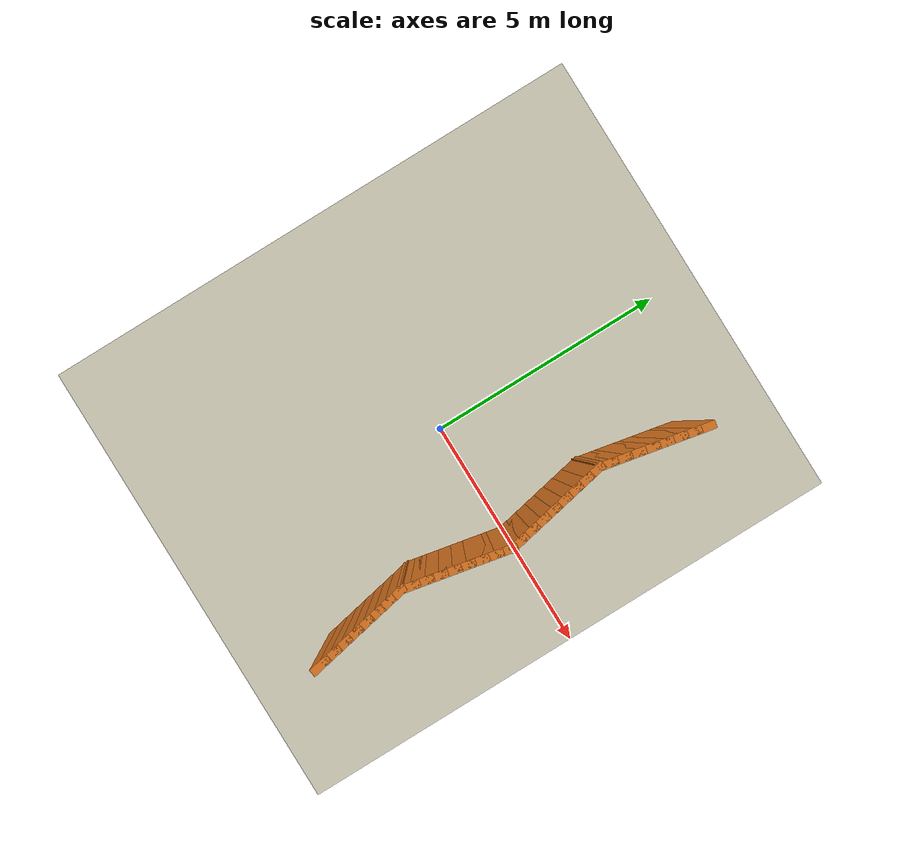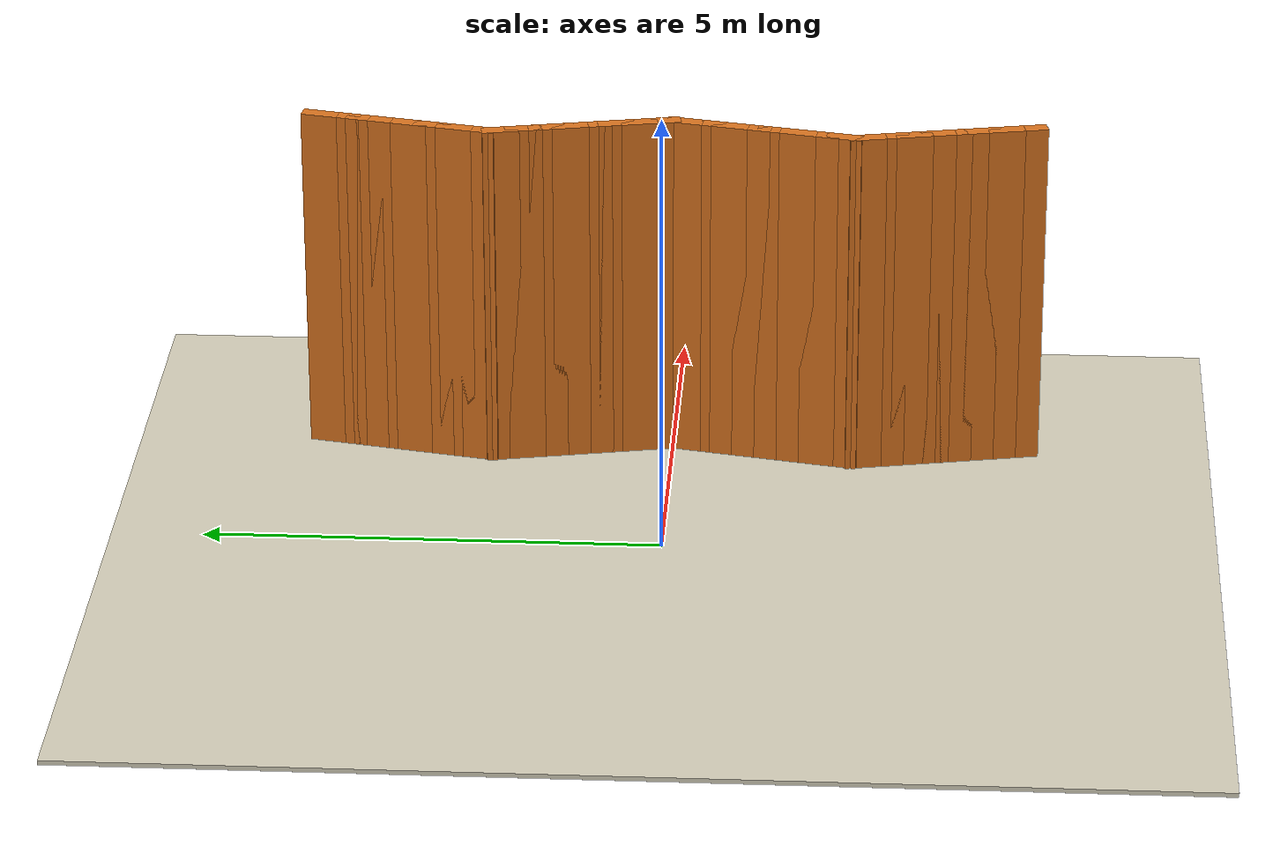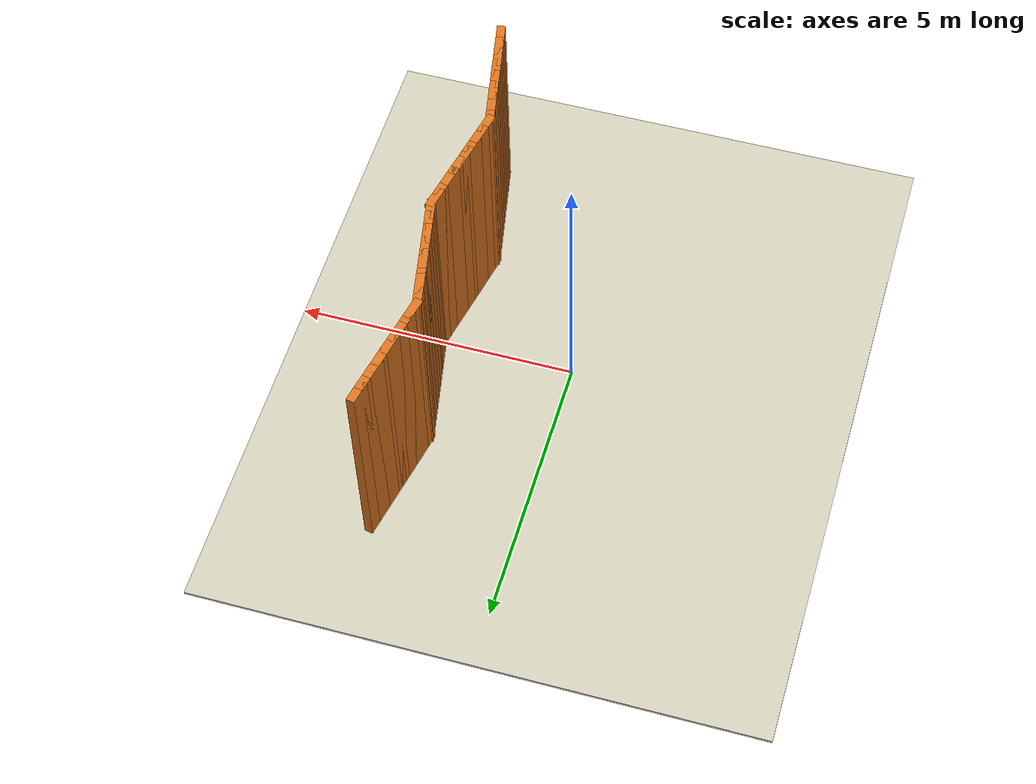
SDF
<sdf version="1.9">
 <world name="p4_zigzag">
  <physics name="1ms" type="ignored">
   <max_step_size>0.001</max_step_size>
   <real_time_factor>1.0</real_time_factor>
  </physics>
  <plugin filename="gz-sim-physics-system" name="gz::sim::systems::Physics"/>
  <plugin filename="gz-sim-scene-broadcaster-system" name="gz::sim::systems::SceneBroadcaster"/>
  <plugin filename="gz-sim-user-commands-system" name="gz::sim::systems::UserCommands"/>
  <plugin filename="gz-sim-sensors-system" name="gz::sim::systems::Sensors">
   <render_engine>ogre2</render_engine>
  </plugin>
  <plugin filename="gz-sim-imu-system" name="gz::sim::systems::Imu"/>
  <plugin filename="gz-sim-navsat-system" name="gz::sim::systems::NavSat"/>
  <spherical_coordinates>
   <latitude_deg>-35.363262</latitude_deg>
   <longitude_deg>149.165237</longitude_deg>
   <elevation>584</elevation>
   <heading_deg>0</heading_deg>
   <surface_model>EARTH_WGS84</surface_model>
  </spherical_coordinates>
  <light type="directional" name="main_light">
   <cast_shadows>false</cast_shadows>
   <pose>0 0 10 0 0 0</pose>
   <diffuse>1.0 1.0 1.0 1</diffuse>
   <specular>0.5 0.5 0.5 1</specular>
   <direction>0.1 0.1 -1</direction>
  </light>
  <model name="floor">
   <static>true</static>
   <link name="link">
    <collision name="c"><geometry><box><size>10.0 12.0 0.05</size></box></geometry></collision>
    <visual name="v">
     <geometry><box><size>10.0 12.0 0.05</size></box></geometry>
     <material><ambient>0.82 0.80 0.72 1</ambient><diffuse>0.82 0.80 0.72 1</diffuse></material>
    </visual>
   </link>
  </model>
  <model name="wall_000">
   <static>true</static>
   <pose>2.3750 -3.8750 2.0000 0 0 1.76819</pose>
   <link name="link">
    <collision name="c"><geometry><box><size>0.4050 0.1500 4.0000</size></box></geometry></collision>
    <visual name="v">
     <geometry><box><size>0.4050 0.1500 4.0000</size></box></geometry>
     <material><ambient>0.85 0.45 0.12 1</ambient><diffuse>0.85 0.45 0.12 1</diffuse></material>
    </visual>
   </link>
  </model>
  <model name="wall_001">
   <static>true</static>
   <pose>2.3250 -3.6250 2.0000 0 0 1.76819</pose>
   <link name="link">
    <collision name="c"><geometry><box><size>0.4050 0.1500 4.0000</size></box></geometry></collision>
    <visual name="v">
     <geometry><box><size>0.4050 0.1500 4.0000</size></box></geometry>
     <material><ambient>0.85 0.45 0.12 1</ambient><diffuse>0.85 0.45 0.12 1</diffuse></material>
    </visual>
   </link>
  </model>
  <model name="wall_002">
   <static>true</static>
   <pose>2.2750 -3.3750 2.0000 0 0 1.76819</pose>
   <link name="link">
    <collision name="c"><geometry><box><size>0.4050 0.1500 4.0000</size></box></geometry></collision>
    <visual name="v">
     <geometry><box><size>0.4050 0.1500 4.0000</size></box></geometry>
     <material><ambient>0.85 0.45 0.12 1</ambient><diffuse>0.85 0.45 0.12 1</diffuse></material>
    </visual>
   </link>
  </model>
  <model name="wall_003">
   <static>true</static>
   <pose>2.2250 -3.1250 2.0000 0 0 1.76819</pose>
   <link name="link">
    <collision name="c"><geometry><box><size>0.4050 0.1500 4.0000</size></box></geometry></collision>
    <visual name="v">
     <geometry><box><size>0.4050 0.1500 4.0000</size></box></geometry>
     <material><ambient>0.85 0.45 0.12 1</ambient><diffuse>0.85 0.45 0.12 1</diffuse></material>
    </visual>
   </link>
  </model>
  <model name="wall_004">
   <static>true</static>
   <pose>2.1750 -2.8750 2.0000 0 0 1.76819</pose>
   <link name="link">
    <collision name="c"><geometry><box><size>0.4050 0.1500 4.0000</size></box></geometry></collision>
    <visual name="v">
     <geometry><box><size>0.4050 0.1500 4.0000</size></box></geometry>
     <material><ambient>0.85 0.45 0.12 1</ambient><diffuse>0.85 0.45 0.12 1</diffuse></material>
    </visual>
   </link>
  </model>
  <model name="wall_005">
   <static>true</static>
   <pose>2.1250 -2.6250 2.0000 0 0 1.76819</pose>
   <link name="link">
    <collision name="c"><geometry><box><size>0.4050 0.1500 4.0000</size></box></geometry></collision>
    <visual name="v">
     <geometry><box><size>0.4050 0.1500 4.0000</size></box></geometry>
     <material><ambient>0.85 0.45 0.12 1</ambient><diffuse>0.85 0.45 0.12 1</diffuse></material>
    </visual>
   </link>
  </model>
  <model name="wall_006">
   <static>true</static>
   <pose>2.0750 -2.3750 2.0000 0 0 1.76819</pose>
   <link name="link">
    <collision name="c"><geometry><box><size>0.4050 0.1500 4.0000</size></box></geometry></collision>
    <visual name="v">
     <geometry><box><size>0.4050 0.1500 4.0000</size></box></geometry>
     <material><ambient>0.85 0.45 0.12 1</ambient><diffuse>0.85 0.45 0.12 1</diffuse></material>
    </visual>
   </link>
  </model>
  <model name="wall_007">
   <static>true</static>
   <pose>2.0250 -2.1250 2.0000 0 0 1.76819</pose>
   <link name="link">
    <collision name="c"><geometry><box><size>0.4050 0.1500 4.0000</size></box></geometry></collision>
    <visual name="v">
     <geometry><box><size>0.4050 0.1500 4.0000</size></box></geometry>
     <material><ambient>0.85 0.45 0.12 1</ambient><diffuse>0.85 0.45 0.12 1</diffuse></material>
    </visual>
   </link>
  </model>
  <model name="wall_008">
   <static>true</static>
   <pose>2.0250 -1.8750 2.0000 0 0 1.37340</pose>
   <link name="link">
    <collision name="c"><geometry><box><size>0.4050 0.1500 4.0000</size></box></geometry></collision>
    <visual name="v">
     <geometry><box><size>0.4050 0.1500 4.0000</size></box></geometry>
     <material><ambient>0.85 0.45 0.12 1</ambient><diffuse>0.85 0.45 0.12 1</diffuse></material>
    </visual>
   </link>
  </model>
  <model name="wall_009">
   <static>true</static>
   <pose>2.0750 -1.6250 2.0000 0 0 1.37340</pose>
   <link name="link">
    <collision name="c"><geometry><box><size>0.4050 0.1500 4.0000</size></box></geometry></collision>
    <visual name="v">
     <geometry><box><size>0.4050 0.1500 4.0000</size></box></geometry>
     <material><ambient>0.85 0.45 0.12 1</ambient><diffuse>0.85 0.45 0.12 1</diffuse></material>
    </visual>
   </link>
  </model>
  <model name="wall_010">
   <static>true</static>
   <pose>2.1250 -1.3750 2.0000 0 0 1.37340</pose>
   <link name="link">
    <collision name="c"><geometry><box><size>0.4050 0.1500 4.0000</size></box></geometry></collision>
    <visual name="v">
     <geometry><box><size>0.4050 0.1500 4.0000</size></box></geometry>
     <material><ambient>0.85 0.45 0.12 1</ambient><diffuse>0.85 0.45 0.12 1</diffuse></material>
    </visual>
   </link>
  </model>
  <model name="wall_011">
   <static>true</static>
   <pose>2.1750 -1.1250 2.0000 0 0 1.37340</pose>
   <link name="link">
    <collision name="c"><geometry><box><size>0.4050 0.1500 4.0000</size></box></geometry></collision>
    <visual name="v">
     <geometry><box><size>0.4050 0.1500 4.0000</size></box></geometry>
     <material><ambient>0.85 0.45 0.12 1</ambient><diffuse>0.85 0.45 0.12 1</diffuse></material>
    </visual>
   </link>
  </model>
  <model name="wall_012">
   <static>true</static>
   <pose>2.2250 -0.8750 2.0000 0 0 1.37340</pose>
   <link name="link">
    <collision name="c"><geometry><box><size>0.4050 0.1500 4.0000</size></box></geometry></collision>
    <visual name="v">
     <geometry><box><size>0.4050 0.1500 4.0000</size></box></geometry>
     <material><ambient>0.85 0.45 0.12 1</ambient><diffuse>0.85 0.45 0.12 1</diffuse></material>
    </visual>
   </link>
  </model>
  <model name="wall_013">
   <static>true</static>
   <pose>2.2750 -0.6250 2.0000 0 0 1.37340</pose>
   <link name="link">
    <collision name="c"><geometry><box><size>0.4050 0.1500 4.0000</size></box></geometry></collision>
    <visual name="v">
     <geometry><box><size>0.4050 0.1500 4.0000</size></box></geometry>
     <material><ambient>0.85 0.45 0.12 1</ambient><diffuse>0.85 0.45 0.12 1</diffuse></material>
    </visual>
   </link>
  </model>
  <model name="wall_014">
   <static>true</static>
   <pose>2.3250 -0.3750 2.0000 0 0 1.37340</pose>
   <link name="link">
    <collision name="c"><geometry><box><size>0.4050 0.1500 4.0000</size></box></geometry></collision>
    <visual name="v">
     <geometry><box><size>0.4050 0.1500 4.0000</size></box></geometry>
     <material><ambient>0.85 0.45 0.12 1</ambient><diffuse>0.85 0.45 0.12 1</diffuse></material>
    </visual>
   </link>
  </model>
  <model name="wall_015">
   <static>true</static>
   <pose>2.3750 -0.1250 2.0000 0 0 1.37340</pose>
   <link name="link">
    <collision name="c"><geometry><box><size>0.4050 0.1500 4.0000</size></box></geometry></collision>
    <visual name="v">
     <geometry><box><size>0.4050 0.1500 4.0000</size></box></geometry>
     <material><ambient>0.85 0.45 0.12 1</ambient><diffuse>0.85 0.45 0.12 1</diffuse></material>
    </visual>
   </link>
  </model>
  <model name="wall_016">
   <static>true</static>
   <pose>2.3750 0.1250 2.0000 0 0 1.76819</pose>
   <link name="link">
    <collision name="c"><geometry><box><size>0.4050 0.1500 4.0000</size></box></geometry></collision>
    <visual name="v">
     <geometry><box><size>0.4050 0.1500 4.0000</size></box></geometry>
     <material><ambient>0.85 0.45 0.12 1</ambient><diffuse>0.85 0.45 0.12 1</diffuse></material>
    </visual>
   </link>
  </model>
  <model name="wall_017">
   <static>true</static>
   <pose>2.3250 0.3750 2.0000 0 0 1.76819</pose>
   <link name="link">
    <collision name="c"><geometry><box><size>0.4050 0.1500 4.0000</size></box></geometry></collision>
    <visual name="v">
     <geometry><box><size>0.4050 0.1500 4.0000</size></box></geometry>
     <material><ambient>0.85 0.45 0.12 1</ambient><diffuse>0.85 0.45 0.12 1</diffuse></material>
    </visual>
   </link>
  </model>
  <model name="wall_018">
   <static>true</static>
   <pose>2.2750 0.6250 2.0000 0 0 1.76819</pose>
   <link name="link">
    <collision name="c"><geometry><box><size>0.4050 0.1500 4.0000</size></box></geometry></collision>
    <visual name="v">
     <geometry><box><size>0.4050 0.1500 4.0000</size></box></geometry>
     <material><ambient>0.85 0.45 0.12 1</ambient><diffuse>0.85 0.45 0.12 1</diffuse></material>
    </visual>
   </link>
  </model>
  <model name="wall_019">
   <static>true</static>
   <pose>2.2250 0.8750 2.0000 0 0 1.76819</pose>
   <link name="link">
    <collision name="c"><geometry><box><size>0.4050 0.1500 4.0000</size></box></geometry></collision>
    <visual name="v">
     <geometry><box><size>0.4050 0.1500 4.0000</size></box></geometry>
     <material><ambient>0.85 0.45 0.12 1</ambient><diffuse>0.85 0.45 0.12 1</diffuse></material>
    </visual>
   </link>
  </model>
  <model name="wall_020">
   <static>true</static>
   <pose>2.1750 1.1250 2.0000 0 0 1.76819</pose>
   <link name="link">
    <collision name="c"><geometry><box><size>0.4050 0.1500 4.0000</size></box></geometry></collision>
    <visual name="v">
     <geometry><box><size>0.4050 0.1500 4.0000</size></box></geometry>
     <material><ambient>0.85 0.45 0.12 1</ambient><diffuse>0.85 0.45 0.12 1</diffuse></material>
    </visual>
   </link>
  </model>
  <model name="wall_021">
   <static>true</static>
   <pose>2.1250 1.3750 2.0000 0 0 1.76819</pose>
   <link name="link">
    <collision name="c"><geometry><box><size>0.4050 0.1500 4.0000</size></box></geometry></collision>
    <visual name="v">
     <geometry><box><size>0.4050 0.1500 4.0000</size></box></geometry>
     <material><ambient>0.85 0.45 0.12 1</ambient><diffuse>0.85 0.45 0.12 1</diffuse></material>
    </visual>
   </link>
  </model>
  <model name="wall_022">
   <static>true</static>
   <pose>2.0750 1.6250 2.0000 0 0 1.76819</pose>
   <link name="link">
    <collision name="c"><geometry><box><size>0.4050 0.1500 4.0000</size></box></geometry></collision>
    <visual name="v">
     <geometry><box><size>0.4050 0.1500 4.0000</size></box></geometry>
     <material><ambient>0.85 0.45 0.12 1</ambient><diffuse>0.85 0.45 0.12 1</diffuse></material>
    </visual>
   </link>
  </model>
  <model name="wall_023">
   <static>true</static>
   <pose>2.0250 1.8750 2.0000 0 0 1.76819</pose>
   <link name="link">
    <collision name="c"><geometry><box><size>0.4050 0.1500 4.0000</size></box></geometry></collision>
    <visual name="v">
     <geometry><box><size>0.4050 0.1500 4.0000</size></box></geometry>
     <material><ambient>0.85 0.45 0.12 1</ambient><diffuse>0.85 0.45 0.12 1</diffuse></material>
    </visual>
   </link>
  </model>
  <model name="wall_024">
   <static>true</static>
   <pose>2.0250 2.1250 2.0000 0 0 1.37340</pose>
   <link name="link">
    <collision name="c"><geometry><box><size>0.4050 0.1500 4.0000</size></box></geometry></collision>
    <visual name="v">
     <geometry><box><size>0.4050 0.1500 4.0000</size></box></geometry>
     <material><ambient>0.85 0.45 0.12 1</ambient><diffuse>0.85 0.45 0.12 1</diffuse></material>
    </visual>
   </link>
  </model>
  <model name="wall_025">
   <static>true</static>
   <pose>2.0750 2.3750 2.0000 0 0 1.37340</pose>
   <link name="link">
    <collision name="c"><geometry><box><size>0.4050 0.1500 4.0000</size></box></geometry></collision>
    <visual name="v">
     <geometry><box><size>0.4050 0.1500 4.0000</size></box></geometry>
     <material><ambient>0.85 0.45 0.12 1</ambient><diffuse>0.85 0.45 0.12 1</diffuse></material>
    </visual>
   </link>
  </model>
  <model name="wall_026">
   <static>true</static>
   <pose>2.1250 2.6250 2.0000 0 0 1.37340</pose>
   <link name="link">
    <collision name="c"><geometry><box><size>0.4050 0.1500 4.0000</size></box></geometry></collision>
    <visual name="v">
     <geometry><box><size>0.4050 0.1500 4.0000</size></box></geometry>
     <material><ambient>0.85 0.45 0.12 1</ambient><diffuse>0.85 0.45 0.12 1</diffuse></material>
    </visual>
   </link>
  </model>
  <model name="wall_027">
   <static>true</static>
   <pose>2.1750 2.8750 2.0000 0 0 1.37340</pose>
   <link name="link">
    <collision name="c"><geometry><box><size>0.4050 0.1500 4.0000</size></box></geometry></collision>
    <visual name="v">
     <geometry><box><size>0.4050 0.1500 4.0000</size></box></geometry>
     <material><ambient>0.85 0.45 0.12 1</ambient><diffuse>0.85 0.45 0.12 1</diffuse></material>
    </visual>
   </link>
  </model>
  <model name="wall_028">
   <static>true</static>
   <pose>2.2250 3.1250 2.0000 0 0 1.37340</pose>
   <link name="link">
    <collision name="c"><geometry><box><size>0.4050 0.1500 4.0000</size></box></geometry></collision>
    <visual name="v">
     <geometry><box><size>0.4050 0.1500 4.0000</size></box></geometry>
     <material><ambient>0.85 0.45 0.12 1</ambient><diffuse>0.85 0.45 0.12 1</diffuse></material>
    </visual>
   </link>
  </model>
  <model name="wall_029">
   <static>true</static>
   <pose>2.2750 3.3750 2.0000 0 0 1.37340</pose>
   <link name="link">
    <collision name="c"><geometry><box><size>0.4050 0.1500 4.0000</size></box></geometry></collision>
    <visual name="v">
     <geometry><box><size>0.4050 0.1500 4.0000</size></box></geometry>
     <material><ambient>0.85 0.45 0.12 1</ambient><diffuse>0.85 0.45 0.12 1</diffuse></material>
    </visual>
   </link>
  </model>
  <model name="wall_030">
   <static>true</static>
   <pose>2.3250 3.6250 2.0000 0 0 1.37340</pose>
   <link name="link">
    <collision name="c"><geometry><box><size>0.4050 0.1500 4.0000</size></box></geometry></collision>
    <visual name="v">
     <geometry><box><size>0.4050 0.1500 4.0000</size></box></geometry>
     <material><ambient>0.85 0.45 0.12 1</ambient><diffuse>0.85 0.45 0.12 1</diffuse></material>
    </visual>
   </link>
  </model>
  <model name="wall_031">
   <static>true</static>
   <pose>2.3750 3.8750 2.0000 0 0 1.37340</pose>
   <link name="link">
    <collision name="c"><geometry><box><size>0.4050 0.1500 4.0000</size></box></geometry></collision>
    <visual name="v">
     <geometry><box><size>0.4050 0.1500 4.0000</size></box></geometry>
     <material><ambient>0.85 0.45 0.12 1</ambient><diffuse>0.85 0.45 0.12 1</diffuse></material>
    </visual>
   </link>
  </model>
 </world>
</sdf>
